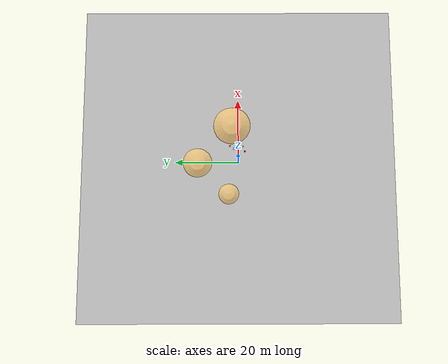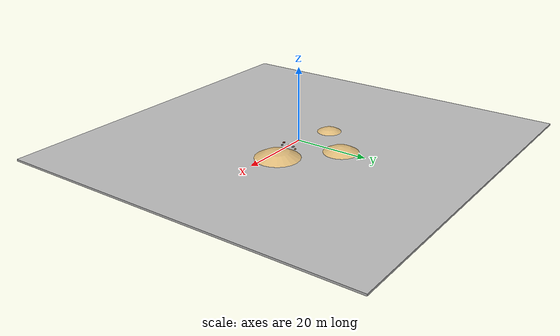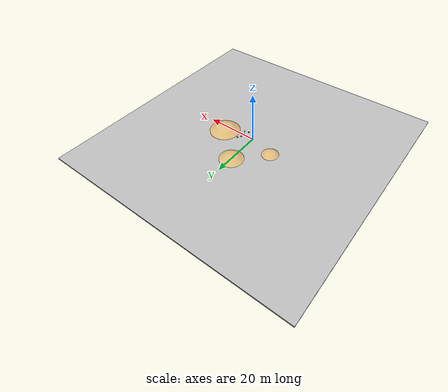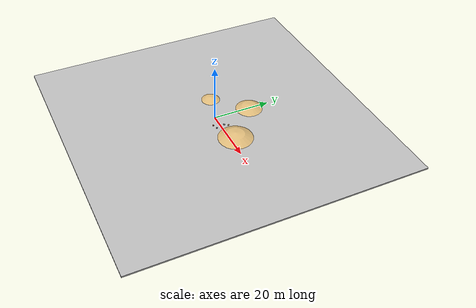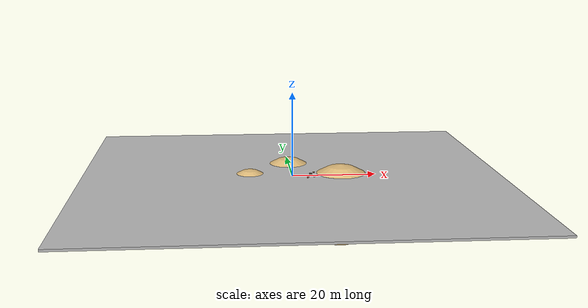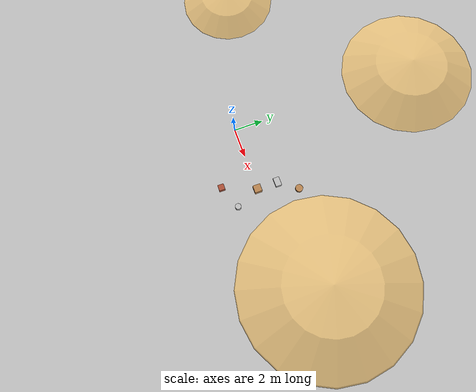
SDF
<?xml version="1.0"?>
<sdf version="1.6">
  <world name="desert">
    <gravity>0 0 -9.81</gravity>
    <physics name="default_physics" type="ode">
      <max_step_size>0.001</max_step_size>
      <real_time_update_rate>1000</real_time_update_rate>
      <!-- Improve convergence of unpowered articulated wheel contacts. -->
      <ode>
        <solver><type>quick</type><iters>150</iters><sor>1.0</sor></solver>
      </ode>
    </physics>
    <scene>
      <ambient>0.65 0.58 0.45 1</ambient>
      <background>0.70 0.82 0.92 1</background>
      <shadows>true</shadows>
    </scene>
    <light name="sun" type="directional">
      <cast_shadows>true</cast_shadows>
      <pose>0 0 20 0 0 0</pose>
      <diffuse>1 0.94 0.82 1</diffuse>
      <specular>0.15 0.15 0.15 1</specular>
      <direction>-0.5 0.3 -1</direction>
    </light>
    <gui fullscreen="0">
      <camera name="overview">
        <pose>25 -30 24 0 0.55 2.2</pose>
        <view_controller>orbit</view_controller>
      </camera>
    </gui>

    <!-- Ground surface at z=0; no external models or textures required. -->
    <model name="sand_ground">
      <static>true</static>
      <pose>0 0 -0.25 0 0 0</pose>
      <link name="ground">
        <collision name="collision">
          <geometry><box><size>100 100 0.5</size></box></geometry>
          <surface><friction><ode><mu>0.8</mu><mu2>0.8</mu2></ode></friction></surface>
        </collision>
        <visual name="visual">
          <geometry><box><size>100 100 0.5</size></box></geometry>
          <!-- Visual only: textured sand gives stereo something to match.
               Collision, friction and LiDAR returns are unchanged. -->
          <material>
            <script>
              <uri>model://rover_sim_materials/materials/scripts</uri>
              <uri>model://rover_sim_materials/materials/textures</uri>
              <name>RoverSim/Sand</name>
            </script>
          </material>
        </visual>
      </link>
    </model>

    <!-- Buried spheres expose smooth spherical caps above the ground.
         Heights: 1.0, 1.5, 2.0 m; footprint diameters: 6.6, 9.3, 12 m.
         The origin remains flat for a future rover spawn. -->
    <model name="hill_west">
      <static>true</static>
      <pose>-10 3 -5 0 0 0</pose>
      <link name="hill">
        <collision name="collision">
          <geometry><sphere><radius>6</radius></sphere></geometry>
          <surface><friction><ode><mu>0.8</mu><mu2>0.8</mu2></ode></friction></surface>
        </collision>
        <visual name="visual">
          <geometry><sphere><radius>6</radius></sphere></geometry>
          <material>
            <ambient>0.76 0.62 0.39 1</ambient>
            <diffuse>0.86 0.72 0.47 1</diffuse>
            <specular>0.02 0.02 0.02 1</specular>
          </material>
        </visual>
      </link>
    </model>
    <model name="hill_north">
      <static>true</static>
      <pose>0 13 -6.5 0 0 0</pose>
      <link name="hill">
        <collision name="collision">
          <geometry><sphere><radius>8</radius></sphere></geometry>
          <surface><friction><ode><mu>0.8</mu><mu2>0.8</mu2></ode></friction></surface>
        </collision>
        <visual name="visual">
          <geometry><sphere><radius>8</radius></sphere></geometry>
          <material>
            <ambient>0.76 0.62 0.39 1</ambient>
            <diffuse>0.86 0.72 0.47 1</diffuse>
            <specular>0.02 0.02 0.02 1</specular>
          </material>
        </visual>
      </link>
    </model>
    <model name="hill_east">
      <static>true</static>
      <pose>12 2 -8 0 0 0</pose>
      <link name="hill">
        <collision name="collision">
          <geometry><sphere><radius>10</radius></sphere></geometry>
          <surface><friction><ode><mu>0.8</mu><mu2>0.8</mu2></ode></friction></surface>
        </collision>
        <visual name="visual">
          <geometry><sphere><radius>10</radius></sphere></geometry>
          <material>
            <ambient>0.76 0.62 0.39 1</ambient>
            <diffuse>0.86 0.72 0.47 1</diffuse>
            <specular>0.02 0.02 0.02 1</specular>
          </material>
        </visual>
      </link>
    </model>

    <model name="stereo_feature_crate">
      <static>true</static>
      <pose>4.5 0 0.175 0 0 0</pose>
      <link name="link">
        <collision name="collision"><geometry><box><size>0.5 0.5 0.35</size></box></geometry></collision>
        <visual name="visual">
          <geometry><box><size>0.5 0.5 0.35</size></box></geometry>
          <material><script><uri>file://media/materials/scripts/gazebo.material</uri><name>Gazebo/WoodPallet</name></script></material>
        </visual>
      </link>
    </model>
    <model name="stereo_feature_rock_slab">
      <static>true</static>
      <pose>4.5 1.4 0.125 0 0 0</pose>
      <link name="link">
        <collision name="collision"><geometry><box><size>0.6 0.4 0.25</size></box></geometry></collision>
        <visual name="visual">
          <geometry><box><size>0.6 0.4 0.25</size></box></geometry>
          <material><script><uri>model://rover_sim_materials/materials/scripts</uri><uri>model://rover_sim_materials/materials/textures</uri><name>RoverSim/Rock</name></script></material>
        </visual>
      </link>
    </model>
    <model name="stereo_feature_brick_block">
      <static>true</static>
      <pose>3.6 -2.2 0.15 0 0 0</pose>
      <link name="link">
        <collision name="collision"><geometry><box><size>0.4 0.4 0.3</size></box></geometry></collision>
        <visual name="visual">
          <geometry><box><size>0.4 0.4 0.3</size></box></geometry>
          <material><script><uri>file://media/materials/scripts/gazebo.material</uri><name>Gazebo/Bricks</name></script></material>
        </visual>
      </link>
    </model>
    <model name="stereo_feature_rock_post">
      <static>true</static>
      <pose>5.2 -1.6 0.15 0 0 0</pose>
      <link name="link">
        <collision name="collision"><geometry><cylinder><radius>0.2</radius><length>0.3</length></cylinder></geometry></collision>
        <visual name="visual">
          <geometry><cylinder><radius>0.2</radius><length>0.3</length></cylinder></geometry>
          <material><script><uri>model://rover_sim_materials/materials/scripts</uri><uri>model://rover_sim_materials/materials/textures</uri><name>RoverSim/Rock</name></script></material>
        </visual>
      </link>
    </model>
    <model name="stereo_feature_stump">
      <static>true</static>
      <pose>5.4 2.6 0.1 0 0 0</pose>
      <link name="link">
        <collision name="collision"><geometry><cylinder><radius>0.25</radius><length>0.2</length></cylinder></geometry></collision>
        <visual name="visual">
          <geometry><cylinder><radius>0.25</radius><length>0.2</length></cylinder></geometry>
          <material><script><uri>file://media/materials/scripts/gazebo.material</uri><name>Gazebo/WoodPallet</name></script></material>
        </visual>
      </link>
    </model>
  </world>
</sdf>
